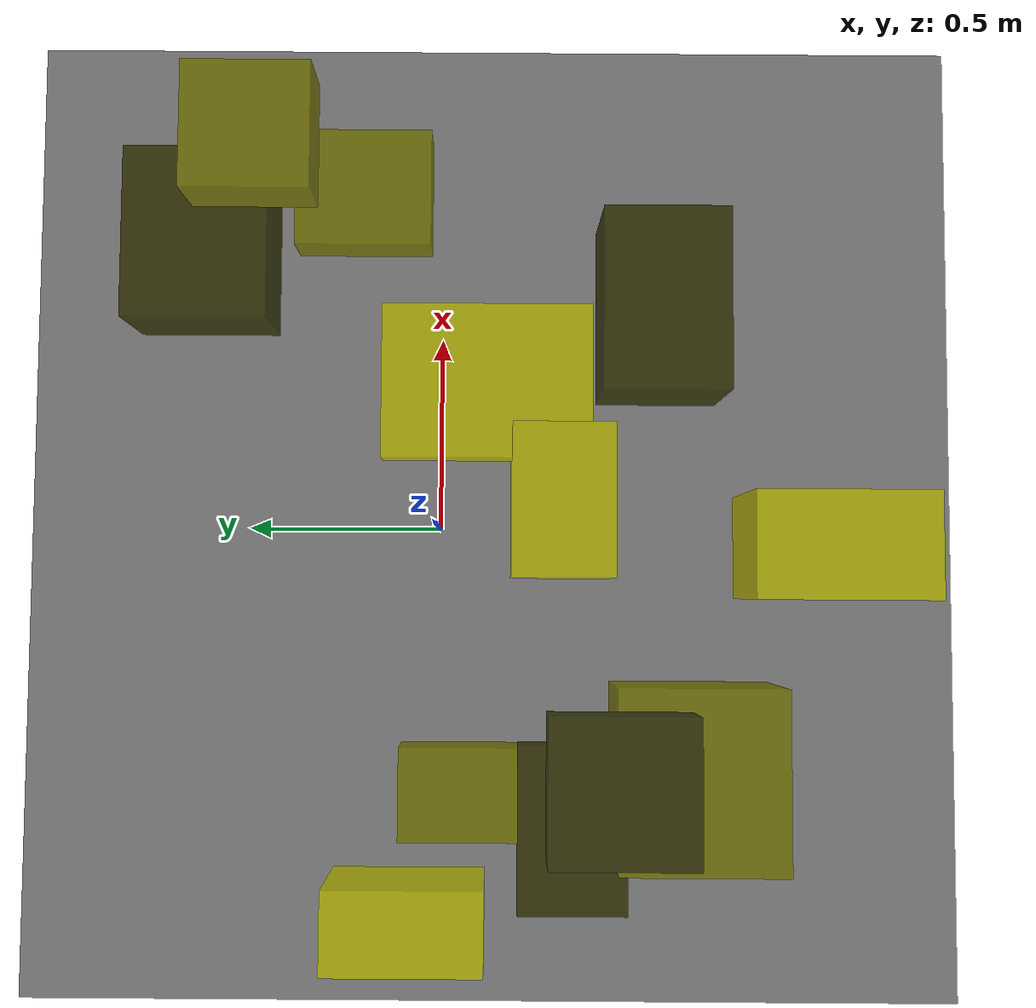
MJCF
<?xml version="1.0"?>
<mujoco model="obstacle_scene">
  <compiler angle="radian" coordinate="local"/>
  <option timestep="0.001" gravity="0 0 -9.81"/>

  <asset>
    <material name="obstacle_mat" rgba="0.8 0.8 0.0 0.8"/>
    <material name="ground_mat" rgba="0.5 0.5 0.5 1"/>
  </asset>

  <worldbody>
    <!-- Ground plane -->
    <geom name="ground" type="plane" size="3 3 0.1" material="ground_mat"/>

    <!-- Obstacles -->
    <body name="obstacle_0" pos="0.464978 -0.504151 0.571474">
      <geom name="obs_0" type="box" size="0.197444 0.136030 0.121868" rgba="0.2 0.2 0.0 0.8"/>
    </body>
    <body name="obstacle_1" pos="-0.607263 -0.081578 0.460706">
      <geom name="obs_1" type="box" size="0.102133 0.152209 0.065019" rgba="0.5 0.5 0.0 0.8"/>
    </body>
    <body name="obstacle_2" pos="-0.066807 -0.812827 0.820623">
      <geom name="obs_2" type="box" size="0.105236 0.177055 0.128252" rgba="0.8 0.8 0.0 0.8"/>
    </body>
    <body name="obstacle_3" pos="-0.680693 -0.312543 0.489571">
      <geom name="obs_3" type="box" size="0.182373 0.119921 0.049966" rgba="0.2 0.2 0.0 0.8"/>
    </body>
    <body name="obstacle_4" pos="-0.562911 -0.588290 0.500860">
      <geom name="obs_4" type="box" size="0.197740 0.183151 0.125169" rgba="0.5 0.5 0.0 0.8"/>
    </body>
    <body name="obstacle_5" pos="0.011896 -0.267703 0.880175">
      <geom name="obs_5" type="box" size="0.145293 0.097308 0.123577" rgba="0.8 0.8 0.0 0.8"/>
    </body>
    <body name="obstacle_6" pos="-0.542397 -0.389626 0.860393">
      <geom name="obs_6" type="box" size="0.144907 0.146727 0.059197" rgba="0.2 0.2 0.0 0.8"/>
    </body>
    <body name="obstacle_7" pos="0.803365 0.181284 0.302894">
      <geom name="obs_7" type="box" size="0.139265 0.163231 0.058440" rgba="0.5 0.5 0.0 0.8"/>
    </body>
    <body name="obstacle_8" pos="0.236644 -0.121644 0.947350">
      <geom name="obs_8" type="box" size="0.146322 0.199680 0.034830" rgba="0.8 0.8 0.0 0.8"/>
    </body>
    <body name="obstacle_9" pos="0.665025 0.560479 0.353373">
      <geom name="obs_9" type="box" size="0.200366 0.168133 0.109114" rgba="0.2 0.2 0.0 0.8"/>
    </body>
    <body name="obstacle_10" pos="0.785939 0.376693 0.759001">
      <geom name="obs_10" type="box" size="0.132615 0.133709 0.069539" rgba="0.5 0.5 0.0 0.8"/>
    </body>
    <body name="obstacle_11" pos="-0.759373 0.021549 0.993134">
      <geom name="obs_11" type="box" size="0.074574 0.143721 0.103712" rgba="0.8 0.8 0.0 0.8"/>
    </body>
  </worldbody>
</mujoco>
